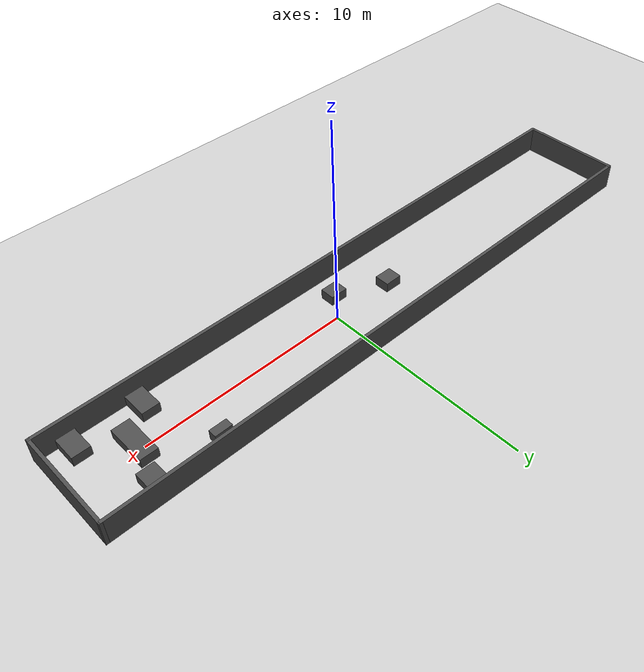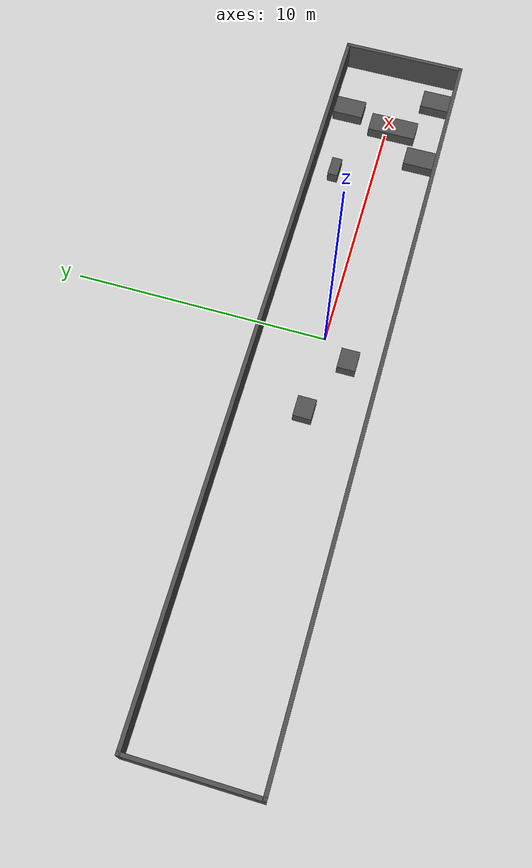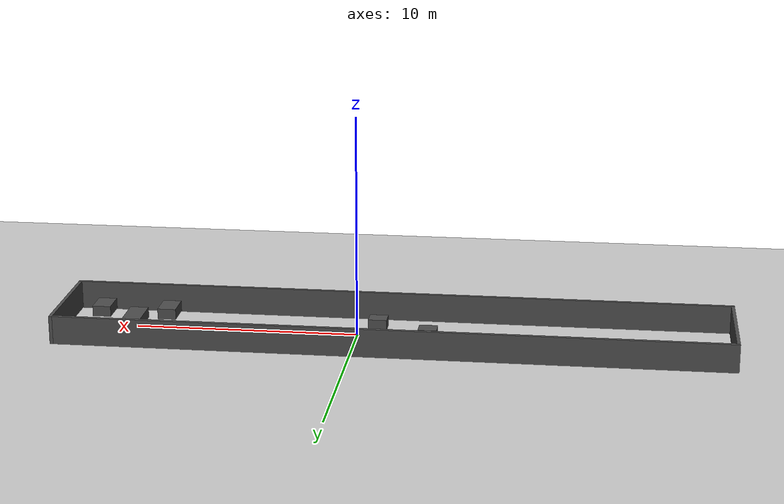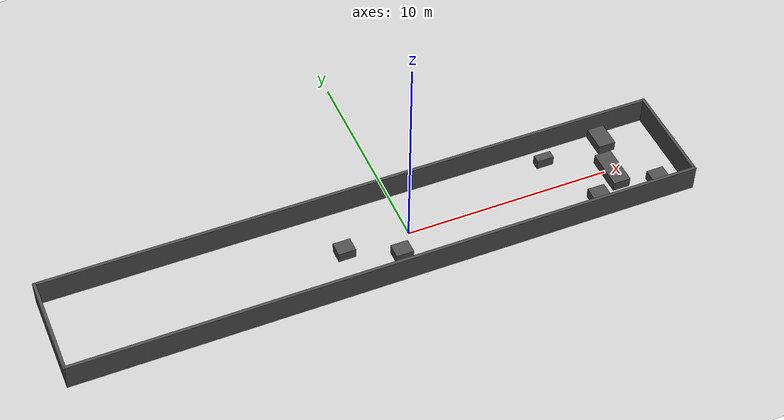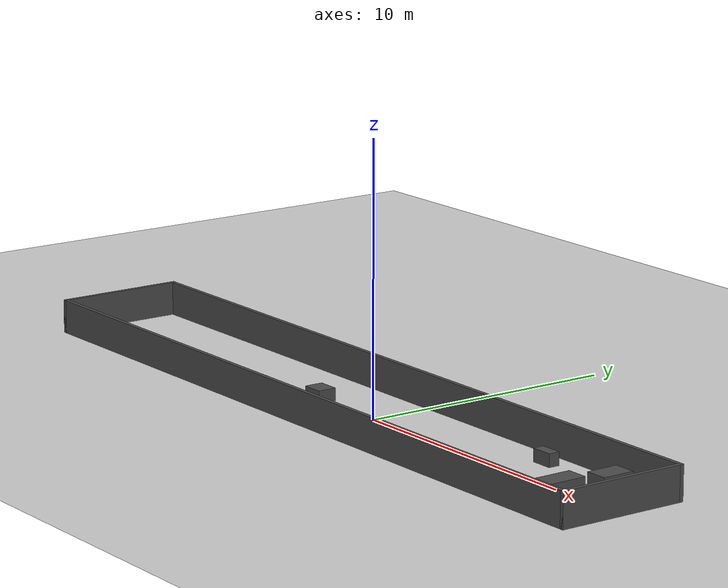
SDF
<sdf version="1.7">
 <world name="exp_room">
  <plugin filename="ignition-gazebo-physics-system" name="ignition::gazebo::systems::Physics"/>
  <plugin filename="ignition-gazebo-scene-broadcaster-system" name="ignition::gazebo::systems::SceneBroadcaster"/>
  <plugin filename="ignition-gazebo-user-commands-system" name="ignition::gazebo::systems::UserCommands"/>
  <physics name="1ms" type="ode">
   <max_step_size>0.001</max_step_size>
   <real_time_factor>1.0</real_time_factor>
  </physics>
  <model name="ground_plane">
   <static>1</static>
   <link name="link">
    <collision name="collision">
     <geometry><plane><normal>0 0 1</normal><size>100 100</size></plane></geometry>
     <surface><friction><ode><mu>100</mu><mu2>50</mu2></ode></friction></surface>
    </collision>
    <visual name="visual">
     <cast_shadows>0</cast_shadows>
     <geometry><plane><normal>0 0 1</normal><size>100 100</size></plane></geometry>
     <material>
      <ambient>0.8 0.8 0.8 1</ambient>
      <diffuse>0.8 0.8 0.8 1</diffuse>
      <specular>0.8 0.8 0.8 1</specular>
     </material>
    </visual>
   </link>
  </model>
  <model name="exp_empty_rooms">
   <pose>-1.66139 0.072106 0 0 -0 0</pose>
   <link name="Wall_0">
    <collision name="Wall_0_Collision">
     <geometry><box><size>5 0.15 2</size></box></geometry>
     <pose>0 0 0.25 0 -0 0</pose>
    </collision>
    <visual name="Wall_0_Visual">
     <pose>0 0 0.25 0 -0 0</pose>
     <geometry><box><size>5 0.15 2</size></box></geometry>
     <material>
      <ambient>0.3 0.3 0.3 1</ambient>
      <diffuse>0.3 0.3 0.3 1</diffuse>
      <specular>0.3 0.5 0.3 1</specular>
     </material>
     <meta><layer>0</layer></meta>
    </visual>
    <pose>-14.925 0 0 0 -0 -1.5708</pose>
   </link>
   <link name="Wall_1">
    <collision name="Wall_1_Collision">
     <geometry><box><size>30 0.15 2</size></box></geometry>
     <pose>0 0 0.25 0 -0 0</pose>
    </collision>
    <visual name="Wall_1_Visual">
     <pose>0 0 0.25 0 -0 0</pose>
     <geometry><box><size>30 0.15 2</size></box></geometry>
     <material>
      <ambient>0.3 0.3 0.3 1</ambient>
      <diffuse>0.3 0.3 0.3 1</diffuse>
      <specular>0.3 0.5 0.3 1</specular>
     </material>
     <meta><layer>0</layer></meta>
    </visual>
    <pose>0 -2.425 0 0 -0 0</pose>
   </link>
   <link name="Wall_2">
    <collision name="Wall_2_Collision">
     <geometry><box><size>5 0.15 2</size></box></geometry>
     <pose>0 0 0.25 0 -0 0</pose>
    </collision>
    <visual name="Wall_2_Visual">
     <pose>0 0 0.25 0 -0 0</pose>
     <geometry><box><size>5 0.15 2</size></box></geometry>
     <material>
      <ambient>0.3 0.3 0.3 1</ambient>
      <diffuse>0.3 0.3 0.3 1</diffuse>
      <specular>0.3 0.5 0.3 1</specular>
     </material>
     <meta><layer>0</layer></meta>
    </visual>
    <pose>14.925 0 0 0 -0 1.5708</pose>
   </link>
   <link name="Wall_3">
    <collision name="Wall_3_Collision">
     <geometry><box><size>30 0.15 2</size></box></geometry>
     <pose>0 0 0.25 0 -0 0</pose>
    </collision>
    <visual name="Wall_3_Visual">
     <pose>0 0 0.25 0 -0 0</pose>
     <geometry><box><size>30 0.15 2</size></box></geometry>
     <material>
      <ambient>0.3 0.3 0.3 1</ambient>
      <diffuse>0.3 0.3 0.3 1</diffuse>
      <specular>0.3 0.5 0.3 1</specular>
     </material>
     <meta><layer>0</layer></meta>
    </visual>
    <pose>0 2.425 0 0 -0 3.14159</pose>
   </link>
   <static>1</static>
  </model>
  <model name="unit_box_clone_1">
   <pose>-3.15305 -0.028544 0.243066 0 -0 0</pose>
   <link name="link">
    <inertial>
     <mass>1</mass>
     <inertia>
      <ixx>0.166667</ixx>
      <ixy>0</ixy>
      <ixz>0</ixz>
      <iyy>0.166667</iyy>
      <iyz>0</iyz>
      <izz>0.166667</izz>
     </inertia>
    </inertial>
    <collision name="collision">
     <geometry><box><size>0.832545 0.712184 0.486131</size></box></geometry>
    </collision>
    <visual name="visual">
     <geometry><box><size>0.832545 0.712184 0.486131</size></box></geometry>
     <material>
      <ambient>0.3 0.3 0.3 1</ambient>
      <diffuse>0.3 0.3 0.3 1</diffuse>
      <specular>0.3 0.5 0.3 1</specular>
     </material>
    </visual>
   </link>
  </model>
  <model name="unit_box_clone_2">
   <pose>-0.800903 -1.10327 0.243066 0 -0 0</pose>
   <link name="link">
    <inertial>
     <mass>1</mass>
     <inertia>
      <ixx>0.166667</ixx>
      <ixy>0</ixy>
      <ixz>0</ixz>
      <iyy>0.166667</iyy>
      <iyz>0</iyz>
      <izz>0.166667</izz>
     </inertia>
    </inertial>
    <collision name="collision">
     <geometry><box><size>0.832545 0.712184 0.486131</size></box></geometry>
    </collision>
    <visual name="visual">
     <geometry><box><size>0.832545 0.712184 0.486131</size></box></geometry>
     <material>
      <ambient>0.3 0.3 0.3 1</ambient>
      <diffuse>0.3 0.3 0.3 1</diffuse>
      <specular>0.3 0.5 0.3 1</specular>
     </material>
    </visual>
   </link>
  </model>
  <model name="unit_box_clone_3">
   <pose>7.57023 1.58634 0.243066 0 -0 0</pose>
   <link name="link">
    <inertial>
     <mass>1</mass>
     <inertia>
      <ixx>0.166667</ixx>
      <ixy>0</ixy>
      <ixz>0</ixz>
      <iyy>0.166667</iyy>
      <iyz>0</iyz>
      <izz>0.166667</izz>
     </inertia>
    </inertial>
    <collision name="collision"><geometry><box><size>0.832545 0.41249 0.486131</size></box></geometry></collision>
    <visual name="visual">
     <geometry><box><size>0.832545 0.41249 0.486131</size></box></geometry>
     <material>
      <ambient>0.3 0.3 0.3 1</ambient>
      <diffuse>0.3 0.3 0.3 1</diffuse>
      <specular>0.3 0.5 0.3 1</specular>
     </material>
    </visual>
   </link>
  </model>
  <model name="unit_box_clone_4">
   <pose>8.93395 -1.67677 0.243066 0 -0 -3e-06</pose>
   <link name="link">
    <inertial>
     <mass>1</mass>
     <inertia>
      <ixx>0.166667</ixx>
      <ixy>0</ixy>
      <ixz>0</ixz>
      <iyy>0.166667</iyy>
      <iyz>0</iyz>
      <izz>0.166667</izz>
     </inertia>
    </inertial>
    <collision name="collision"><geometry><box><size>0.832545 1.22961 0.486131</size></box></geometry></collision>
    <visual name="visual">
     <geometry><box><size>0.832545 1.22961 0.486131</size></box></geometry>
     <material>
      <ambient>0.3 0.3 0.3 1</ambient>
      <diffuse>0.3 0.3 0.3 1</diffuse>
      <specular>0.3 0.5 0.3 1</specular>
     </material>
    </visual>
   </link>
  </model>
  <model name="unit_box_clone_5">
   <pose>10.6858 1.74416 0.243066 0 0 -3e-06</pose>
   <link name="link">
    <inertial>
     <mass>1</mass>
     <inertia>
      <ixx>0.166667</ixx>
      <ixy>0</ixy>
      <ixz>0</ixz>
      <iyy>0.166667</iyy>
      <iyz>0</iyz>
      <izz>0.166667</izz>
     </inertia>
    </inertial>
    <collision name="collision"><geometry><box><size>0.832545 1.22961 0.486131</size></box></geometry></collision>
    <visual name="visual">
     <geometry><box><size>0.832545 1.22961 0.486131</size></box></geometry>
     <material>
      <ambient>0.3 0.3 0.3 1</ambient>
      <diffuse>0.3 0.3 0.3 1</diffuse>
      <specular>0.3 0.5 0.3 1</specular>
     </material>
    </visual>
   </link>
  </model>
  <model name="unit_box_clone_6">
   <pose>11.9853 -1.72376 0.243066 0 0 -3e-06</pose>
   <link name="link">
    <inertial>
     <mass>1</mass>
     <inertia>
      <ixx>0.166667</ixx>
      <ixy>0</ixy>
      <ixz>0</ixz>
      <iyy>0.166667</iyy>
      <iyz>0</iyz>
      <izz>0.166667</izz>
     </inertia>
    </inertial>
    <collision name="collision"><geometry><box><size>0.832545 1.22961 0.486131</size></box></geometry></collision>
    <visual name="visual">
     <geometry><box><size>0.832545 1.22961 0.486131</size></box></geometry>
     <material>
      <ambient>0.3 0.3 0.3 1</ambient>
      <diffuse>0.3 0.3 0.3 1</diffuse>
      <specular>0.3 0.5 0.3 1</specular>
     </material>
    </visual>
   </link>
  </model>
  <model name="unit_box_clone_7">
   <pose>10.2257 -0.24986 0.243066 0 0 -3e-06</pose>
   <link name="link">
    <inertial>
     <mass>1</mass>
     <inertia>
      <ixx>0.166667</ixx>
      <ixy>0</ixy>
      <ixz>0</ixz>
      <iyy>0.166667</iyy>
      <iyz>0</iyz>
      <izz>0.166667</izz>
     </inertia>
    </inertial>
    <collision name="collision"><geometry><box><size>0.832545 1.95429 0.486131</size></box></geometry></collision>
    <visual name="visual">
     <geometry><box><size>0.832545 1.95429 0.486131</size></box></geometry>
     <material>
      <ambient>0.3 0.3 0.3 1</ambient>
      <diffuse>0.3 0.3 0.3 1</diffuse>
      <specular>0.3 0.5 0.3 1</specular>
     </material>
    </visual>
   </link>
  </model>
 </world>
</sdf>
